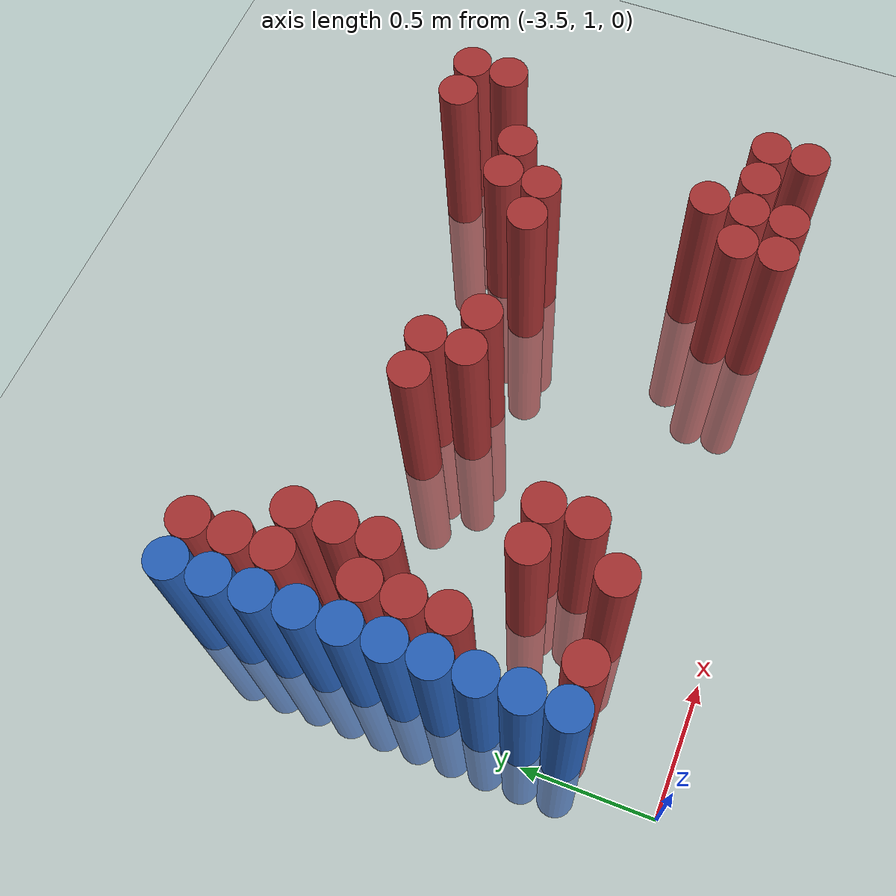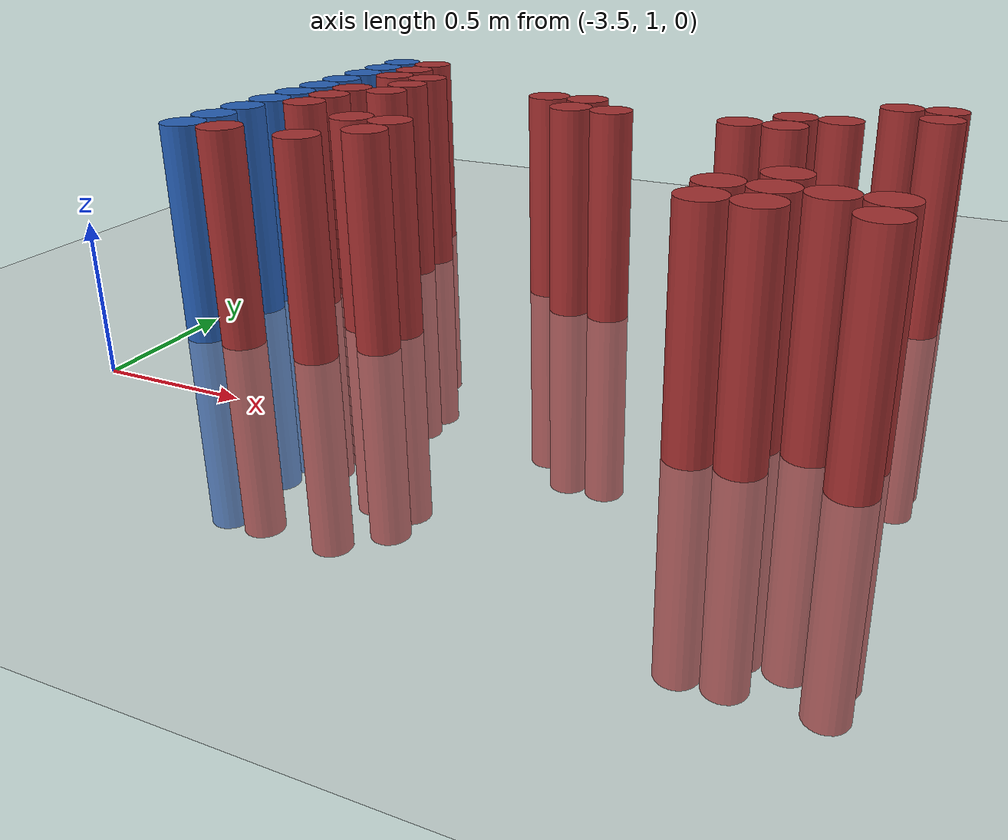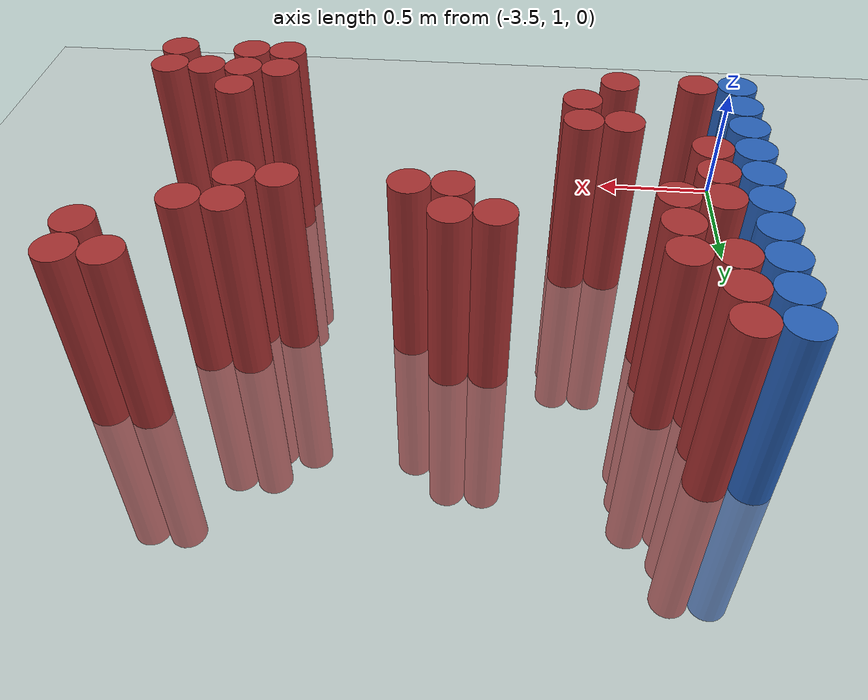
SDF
<sdf version="1.6">
 <world name="default">
  <model name="ground_plane">
   <static>1</static>
   <link name="link">
    <collision name="collision">
     <geometry><plane><normal>0 0 1</normal><size>100 100</size></plane></geometry>
     <surface><friction><ode><mu>100</mu><mu2>50</mu2></ode></friction></surface>
    </collision>
    <visual name="visual">
     <cast_shadows>0</cast_shadows>
     <geometry><plane><normal>0 0 1</normal><size>100 100</size></plane></geometry>
     <material>
      <script><uri>file://media/materials/scripts/gazebo.material</uri><name>Gazebo/Grey</name></script>
     </material>
    </visual>
   </link>
  </model>
  <model name="unit_cylinder_133">
   <static>1</static>
   <pose>-3.425000 1.375000 0.000000 0.000000 0.000000 0.000000</pose>
   <link name="link">
    <inertial>
     <mass>1</mass>
     <inertia><ixx>0.145833</ixx><ixy>0</ixy><ixz>0</ixz><iyy>0.145833</iyy><iyz>0</iyz><izz>0.125</izz></inertia>
    </inertial>
    <collision name="collision">
     <geometry><cylinder><radius>0.075000</radius><length>1.5</length></cylinder></geometry>
    </collision>
    <visual name="visual">
     <geometry><cylinder><radius>0.075000</radius><length>1.5</length></cylinder></geometry>
     <material>
      <ambient>0.152000 0.379000 0.720000 1</ambient>
      <diffuse>0.152000 0.379000 0.720000 1</diffuse>
     </material>
     <material>
      <script><name>Gazebo/Grey</name><uri>file://media/materials/scripts/gazebo.material</uri></script>
     </material>
    </visual>
   </link>
  </model>
  <model name="unit_cylinder_135">
   <static>1</static>
   <pose>-3.425000 1.525000 0.000000 0.000000 0.000000 0.000000</pose>
   <link name="link">
    <inertial>
     <mass>1</mass>
     <inertia><ixx>0.145833</ixx><ixy>0</ixy><ixz>0</ixz><iyy>0.145833</iyy><iyz>0</iyz><izz>0.125</izz></inertia>
    </inertial>
    <collision name="collision">
     <geometry><cylinder><radius>0.075000</radius><length>1.5</length></cylinder></geometry>
    </collision>
    <visual name="visual">
     <geometry><cylinder><radius>0.075000</radius><length>1.5</length></cylinder></geometry>
     <material>
      <ambient>0.152000 0.379000 0.720000 1</ambient>
      <diffuse>0.152000 0.379000 0.720000 1</diffuse>
     </material>
     <material>
      <script><name>Gazebo/Grey</name><uri>file://media/materials/scripts/gazebo.material</uri></script>
     </material>
    </visual>
   </link>
  </model>
  <model name="unit_cylinder_137">
   <static>1</static>
   <pose>-3.425000 1.675000 0.000000 0.000000 0.000000 0.000000</pose>
   <link name="link">
    <inertial>
     <mass>1</mass>
     <inertia><ixx>0.145833</ixx><ixy>0</ixy><ixz>0</ixz><iyy>0.145833</iyy><iyz>0</iyz><izz>0.125</izz></inertia>
    </inertial>
    <collision name="collision">
     <geometry><cylinder><radius>0.075000</radius><length>1.5</length></cylinder></geometry>
    </collision>
    <visual name="visual">
     <geometry><cylinder><radius>0.075000</radius><length>1.5</length></cylinder></geometry>
     <material>
      <ambient>0.152000 0.379000 0.720000 1</ambient>
      <diffuse>0.152000 0.379000 0.720000 1</diffuse>
     </material>
     <material>
      <script><name>Gazebo/Grey</name><uri>file://media/materials/scripts/gazebo.material</uri></script>
     </material>
    </visual>
   </link>
  </model>
  <model name="unit_cylinder_139">
   <static>1</static>
   <pose>-3.425000 1.825000 0.000000 0.000000 0.000000 0.000000</pose>
   <link name="link">
    <inertial>
     <mass>1</mass>
     <inertia><ixx>0.145833</ixx><ixy>0</ixy><ixz>0</ixz><iyy>0.145833</iyy><iyz>0</iyz><izz>0.125</izz></inertia>
    </inertial>
    <collision name="collision">
     <geometry><cylinder><radius>0.075000</radius><length>1.5</length></cylinder></geometry>
    </collision>
    <visual name="visual">
     <geometry><cylinder><radius>0.075000</radius><length>1.5</length></cylinder></geometry>
     <material>
      <ambient>0.152000 0.379000 0.720000 1</ambient>
      <diffuse>0.152000 0.379000 0.720000 1</diffuse>
     </material>
     <material>
      <script><name>Gazebo/Grey</name><uri>file://media/materials/scripts/gazebo.material</uri></script>
     </material>
    </visual>
   </link>
  </model>
  <model name="unit_cylinder_141">
   <static>1</static>
   <pose>-3.425000 1.975000 0.000000 0.000000 0.000000 0.000000</pose>
   <link name="link">
    <inertial>
     <mass>1</mass>
     <inertia><ixx>0.145833</ixx><ixy>0</ixy><ixz>0</ixz><iyy>0.145833</iyy><iyz>0</iyz><izz>0.125</izz></inertia>
    </inertial>
    <collision name="collision">
     <geometry><cylinder><radius>0.075000</radius><length>1.5</length></cylinder></geometry>
    </collision>
    <visual name="visual">
     <geometry><cylinder><radius>0.075000</radius><length>1.5</length></cylinder></geometry>
     <material>
      <ambient>0.152000 0.379000 0.720000 1</ambient>
      <diffuse>0.152000 0.379000 0.720000 1</diffuse>
     </material>
     <material>
      <script><name>Gazebo/Grey</name><uri>file://media/materials/scripts/gazebo.material</uri></script>
     </material>
    </visual>
   </link>
  </model>
  <model name="unit_cylinder_143">
   <static>1</static>
   <pose>-3.425000 2.125000 0.000000 0.000000 0.000000 0.000000</pose>
   <link name="link">
    <inertial>
     <mass>1</mass>
     <inertia><ixx>0.145833</ixx><ixy>0</ixy><ixz>0</ixz><iyy>0.145833</iyy><iyz>0</iyz><izz>0.125</izz></inertia>
    </inertial>
    <collision name="collision">
     <geometry><cylinder><radius>0.075000</radius><length>1.5</length></cylinder></geometry>
    </collision>
    <visual name="visual">
     <geometry><cylinder><radius>0.075000</radius><length>1.5</length></cylinder></geometry>
     <material>
      <ambient>0.152000 0.379000 0.720000 1</ambient>
      <diffuse>0.152000 0.379000 0.720000 1</diffuse>
     </material>
     <material>
      <script><name>Gazebo/Grey</name><uri>file://media/materials/scripts/gazebo.material</uri></script>
     </material>
    </visual>
   </link>
  </model>
  <model name="unit_cylinder_145">
   <static>1</static>
   <pose>-3.425000 2.275000 0.000000 0.000000 0.000000 0.000000</pose>
   <link name="link">
    <inertial>
     <mass>1</mass>
     <inertia><ixx>0.145833</ixx><ixy>0</ixy><ixz>0</ixz><iyy>0.145833</iyy><iyz>0</iyz><izz>0.125</izz></inertia>
    </inertial>
    <collision name="collision">
     <geometry><cylinder><radius>0.075000</radius><length>1.5</length></cylinder></geometry>
    </collision>
    <visual name="visual">
     <geometry><cylinder><radius>0.075000</radius><length>1.5</length></cylinder></geometry>
     <material>
      <ambient>0.152000 0.379000 0.720000 1</ambient>
      <diffuse>0.152000 0.379000 0.720000 1</diffuse>
     </material>
     <material>
      <script><name>Gazebo/Grey</name><uri>file://media/materials/scripts/gazebo.material</uri></script>
     </material>
    </visual>
   </link>
  </model>
  <model name="unit_cylinder_147">
   <static>1</static>
   <pose>-3.425000 2.425000 0.000000 0.000000 0.000000 0.000000</pose>
   <link name="link">
    <inertial>
     <mass>1</mass>
     <inertia><ixx>0.145833</ixx><ixy>0</ixy><ixz>0</ixz><iyy>0.145833</iyy><iyz>0</iyz><izz>0.125</izz></inertia>
    </inertial>
    <collision name="collision">
     <geometry><cylinder><radius>0.075000</radius><length>1.5</length></cylinder></geometry>
    </collision>
    <visual name="visual">
     <geometry><cylinder><radius>0.075000</radius><length>1.5</length></cylinder></geometry>
     <material>
      <ambient>0.152000 0.379000 0.720000 1</ambient>
      <diffuse>0.152000 0.379000 0.720000 1</diffuse>
     </material>
     <material>
      <script><name>Gazebo/Grey</name><uri>file://media/materials/scripts/gazebo.material</uri></script>
     </material>
    </visual>
   </link>
  </model>
  <model name="unit_cylinder_149">
   <static>1</static>
   <pose>-3.425000 2.575000 0.000000 0.000000 0.000000 0.000000</pose>
   <link name="link">
    <inertial>
     <mass>1</mass>
     <inertia><ixx>0.145833</ixx><ixy>0</ixy><ixz>0</ixz><iyy>0.145833</iyy><iyz>0</iyz><izz>0.125</izz></inertia>
    </inertial>
    <collision name="collision">
     <geometry><cylinder><radius>0.075000</radius><length>1.5</length></cylinder></geometry>
    </collision>
    <visual name="visual">
     <geometry><cylinder><radius>0.075000</radius><length>1.5</length></cylinder></geometry>
     <material>
      <ambient>0.152000 0.379000 0.720000 1</ambient>
      <diffuse>0.152000 0.379000 0.720000 1</diffuse>
     </material>
     <material>
      <script><name>Gazebo/Grey</name><uri>file://media/materials/scripts/gazebo.material</uri></script>
     </material>
    </visual>
   </link>
  </model>
  <model name="unit_cylinder_151">
   <static>1</static>
   <pose>-3.425000 2.725000 0.000000 0.000000 0.000000 0.000000</pose>
   <link name="link">
    <inertial>
     <mass>1</mass>
     <inertia><ixx>0.145833</ixx><ixy>0</ixy><ixz>0</ixz><iyy>0.145833</iyy><iyz>0</iyz><izz>0.125</izz></inertia>
    </inertial>
    <collision name="collision">
     <geometry><cylinder><radius>0.075000</radius><length>1.5</length></cylinder></geometry>
    </collision>
    <visual name="visual">
     <geometry><cylinder><radius>0.075000</radius><length>1.5</length></cylinder></geometry>
     <material>
      <ambient>0.152000 0.379000 0.720000 1</ambient>
      <diffuse>0.152000 0.379000 0.720000 1</diffuse>
     </material>
     <material>
      <script><name>Gazebo/Grey</name><uri>file://media/materials/scripts/gazebo.material</uri></script>
     </material>
    </visual>
   </link>
  </model>
  <model name="unit_cylinder_230">
   <static>1</static>
   <pose>-3.425000 1.375000 0.000000 0.000000 0.000000 0.000000</pose>
   <link name="link">
    <inertial>
     <mass>1</mass>
     <inertia><ixx>0.145833</ixx><ixy>0</ixy><ixz>0</ixz><iyy>0.145833</iyy><iyz>0</iyz><izz>0.125</izz></inertia>
    </inertial>
    <collision name="collision">
     <geometry><cylinder><radius>0.075000</radius><length>1.5</length></cylinder></geometry>
    </collision>
    <visual name="visual">
     <geometry><cylinder><radius>0.075000</radius><length>1.5</length></cylinder></geometry>
     <material>
      <ambient>0.152000 0.379000 0.720000 1</ambient>
      <diffuse>0.152000 0.379000 0.720000 1</diffuse>
     </material>
     <material>
      <script><name>Gazebo/Grey</name><uri>file://media/materials/scripts/gazebo.material</uri></script>
     </material>
    </visual>
   </link>
  </model>
  <model name="unit_cylinder_231">
   <static>1</static>
   <pose>-3.425000 1.525000 0.000000 0.000000 0.000000 0.000000</pose>
   <link name="link">
    <inertial>
     <mass>1</mass>
     <inertia><ixx>0.145833</ixx><ixy>0</ixy><ixz>0</ixz><iyy>0.145833</iyy><iyz>0</iyz><izz>0.125</izz></inertia>
    </inertial>
    <collision name="collision">
     <geometry><cylinder><radius>0.075000</radius><length>1.5</length></cylinder></geometry>
    </collision>
    <visual name="visual">
     <geometry><cylinder><radius>0.075000</radius><length>1.5</length></cylinder></geometry>
     <material>
      <ambient>0.152000 0.379000 0.720000 1</ambient>
      <diffuse>0.152000 0.379000 0.720000 1</diffuse>
     </material>
     <material>
      <script><name>Gazebo/Grey</name><uri>file://media/materials/scripts/gazebo.material</uri></script>
     </material>
    </visual>
   </link>
  </model>
  <model name="unit_cylinder_232">
   <static>1</static>
   <pose>-3.425000 1.675000 0.000000 0.000000 0.000000 0.000000</pose>
   <link name="link">
    <inertial>
     <mass>1</mass>
     <inertia><ixx>0.145833</ixx><ixy>0</ixy><ixz>0</ixz><iyy>0.145833</iyy><iyz>0</iyz><izz>0.125</izz></inertia>
    </inertial>
    <collision name="collision">
     <geometry><cylinder><radius>0.075000</radius><length>1.5</length></cylinder></geometry>
    </collision>
    <visual name="visual">
     <geometry><cylinder><radius>0.075000</radius><length>1.5</length></cylinder></geometry>
     <material>
      <ambient>0.152000 0.379000 0.720000 1</ambient>
      <diffuse>0.152000 0.379000 0.720000 1</diffuse>
     </material>
     <material>
      <script><name>Gazebo/Grey</name><uri>file://media/materials/scripts/gazebo.material</uri></script>
     </material>
    </visual>
   </link>
  </model>
  <model name="unit_cylinder_233">
   <static>1</static>
   <pose>-3.425000 1.825000 0.000000 0.000000 0.000000 0.000000</pose>
   <link name="link">
    <inertial>
     <mass>1</mass>
     <inertia><ixx>0.145833</ixx><ixy>0</ixy><ixz>0</ixz><iyy>0.145833</iyy><iyz>0</iyz><izz>0.125</izz></inertia>
    </inertial>
    <collision name="collision">
     <geometry><cylinder><radius>0.075000</radius><length>1.5</length></cylinder></geometry>
    </collision>
    <visual name="visual">
     <geometry><cylinder><radius>0.075000</radius><length>1.5</length></cylinder></geometry>
     <material>
      <ambient>0.152000 0.379000 0.720000 1</ambient>
      <diffuse>0.152000 0.379000 0.720000 1</diffuse>
     </material>
     <material>
      <script><name>Gazebo/Grey</name><uri>file://media/materials/scripts/gazebo.material</uri></script>
     </material>
    </visual>
   </link>
  </model>
  <model name="unit_cylinder_234">
   <static>1</static>
   <pose>-3.425000 1.975000 0.000000 0.000000 0.000000 0.000000</pose>
   <link name="link">
    <inertial>
     <mass>1</mass>
     <inertia><ixx>0.145833</ixx><ixy>0</ixy><ixz>0</ixz><iyy>0.145833</iyy><iyz>0</iyz><izz>0.125</izz></inertia>
    </inertial>
    <collision name="collision">
     <geometry><cylinder><radius>0.075000</radius><length>1.5</length></cylinder></geometry>
    </collision>
    <visual name="visual">
     <geometry><cylinder><radius>0.075000</radius><length>1.5</length></cylinder></geometry>
     <material>
      <ambient>0.152000 0.379000 0.720000 1</ambient>
      <diffuse>0.152000 0.379000 0.720000 1</diffuse>
     </material>
     <material>
      <script><name>Gazebo/Grey</name><uri>file://media/materials/scripts/gazebo.material</uri></script>
     </material>
    </visual>
   </link>
  </model>
  <model name="unit_cylinder_235">
   <static>1</static>
   <pose>-3.425000 2.125000 0.000000 0.000000 0.000000 0.000000</pose>
   <link name="link">
    <inertial>
     <mass>1</mass>
     <inertia><ixx>0.145833</ixx><ixy>0</ixy><ixz>0</ixz><iyy>0.145833</iyy><iyz>0</iyz><izz>0.125</izz></inertia>
    </inertial>
    <collision name="collision">
     <geometry><cylinder><radius>0.075000</radius><length>1.5</length></cylinder></geometry>
    </collision>
    <visual name="visual">
     <geometry><cylinder><radius>0.075000</radius><length>1.5</length></cylinder></geometry>
     <material>
      <ambient>0.152000 0.379000 0.720000 1</ambient>
      <diffuse>0.152000 0.379000 0.720000 1</diffuse>
     </material>
     <material>
      <script><name>Gazebo/Grey</name><uri>file://media/materials/scripts/gazebo.material</uri></script>
     </material>
    </visual>
   </link>
  </model>
  <model name="unit_cylinder_236">
   <static>1</static>
   <pose>-3.425000 2.275000 0.000000 0.000000 0.000000 0.000000</pose>
   <link name="link">
    <inertial>
     <mass>1</mass>
     <inertia><ixx>0.145833</ixx><ixy>0</ixy><ixz>0</ixz><iyy>0.145833</iyy><iyz>0</iyz><izz>0.125</izz></inertia>
    </inertial>
    <collision name="collision">
     <geometry><cylinder><radius>0.075000</radius><length>1.5</length></cylinder></geometry>
    </collision>
    <visual name="visual">
     <geometry><cylinder><radius>0.075000</radius><length>1.5</length></cylinder></geometry>
     <material>
      <ambient>0.152000 0.379000 0.720000 1</ambient>
      <diffuse>0.152000 0.379000 0.720000 1</diffuse>
     </material>
     <material>
      <script><name>Gazebo/Grey</name><uri>file://media/materials/scripts/gazebo.material</uri></script>
     </material>
    </visual>
   </link>
  </model>
  <model name="unit_cylinder_237">
   <static>1</static>
   <pose>-3.425000 2.425000 0.000000 0.000000 0.000000 0.000000</pose>
   <link name="link">
    <inertial>
     <mass>1</mass>
     <inertia><ixx>0.145833</ixx><ixy>0</ixy><ixz>0</ixz><iyy>0.145833</iyy><iyz>0</iyz><izz>0.125</izz></inertia>
    </inertial>
    <collision name="collision">
     <geometry><cylinder><radius>0.075000</radius><length>1.5</length></cylinder></geometry>
    </collision>
    <visual name="visual">
     <geometry><cylinder><radius>0.075000</radius><length>1.5</length></cylinder></geometry>
     <material>
      <ambient>0.152000 0.379000 0.720000 1</ambient>
      <diffuse>0.152000 0.379000 0.720000 1</diffuse>
     </material>
     <material>
      <script><name>Gazebo/Grey</name><uri>file://media/materials/scripts/gazebo.material</uri></script>
     </material>
    </visual>
   </link>
  </model>
  <model name="unit_cylinder_238">
   <static>1</static>
   <pose>-3.425000 2.575000 0.000000 0.000000 0.000000 0.000000</pose>
   <link name="link">
    <inertial>
     <mass>1</mass>
     <inertia><ixx>0.145833</ixx><ixy>0</ixy><ixz>0</ixz><iyy>0.145833</iyy><iyz>0</iyz><izz>0.125</izz></inertia>
    </inertial>
    <collision name="collision">
     <geometry><cylinder><radius>0.075000</radius><length>1.5</length></cylinder></geometry>
    </collision>
    <visual name="visual">
     <geometry><cylinder><radius>0.075000</radius><length>1.5</length></cylinder></geometry>
     <material>
      <ambient>0.152000 0.379000 0.720000 1</ambient>
      <diffuse>0.152000 0.379000 0.720000 1</diffuse>
     </material>
     <material>
      <script><name>Gazebo/Grey</name><uri>file://media/materials/scripts/gazebo.material</uri></script>
     </material>
    </visual>
   </link>
  </model>
  <model name="unit_cylinder_239">
   <static>1</static>
   <pose>-3.425000 2.725000 0.000000 0.000000 0.000000 0.000000</pose>
   <link name="link">
    <inertial>
     <mass>1</mass>
     <inertia><ixx>0.145833</ixx><ixy>0</ixy><ixz>0</ixz><iyy>0.145833</iyy><iyz>0</iyz><izz>0.125</izz></inertia>
    </inertial>
    <collision name="collision">
     <geometry><cylinder><radius>0.075000</radius><length>1.5</length></cylinder></geometry>
    </collision>
    <visual name="visual">
     <geometry><cylinder><radius>0.075000</radius><length>1.5</length></cylinder></geometry>
     <material>
      <ambient>0.152000 0.379000 0.720000 1</ambient>
      <diffuse>0.152000 0.379000 0.720000 1</diffuse>
     </material>
     <material>
      <script><name>Gazebo/Grey</name><uri>file://media/materials/scripts/gazebo.material</uri></script>
     </material>
    </visual>
   </link>
  </model>
  <model name="unit_cylinder_271">
   <static>1</static>
   <pose>-3.275000 1.375000 0.000000 0.000000 0.000000 0.000000</pose>
   <link name="link">
    <inertial>
     <mass>1</mass>
     <inertia><ixx>0.145833</ixx><ixy>0</ixy><ixz>0</ixz><iyy>0.145833</iyy><iyz>0</iyz><izz>0.125</izz></inertia>
    </inertial>
    <collision name="collision">
     <geometry><cylinder><radius>0.075000</radius><length>1.5</length></cylinder></geometry>
    </collision>
    <visual name="visual">
     <geometry><cylinder><radius>0.075000</radius><length>1.5</length></cylinder></geometry>
     <material>
      <ambient>0.648000 0.192000 0.192000 1</ambient>
      <diffuse>0.648000 0.192000 0.192000 1</diffuse>
     </material>
     <material>
      <script><name>Gazebo/Grey</name><uri>file://media/materials/scripts/gazebo.material</uri></script>
     </material>
    </visual>
   </link>
  </model>
  <model name="unit_cylinder_272">
   <static>1</static>
   <pose>-3.275000 1.825000 0.000000 0.000000 0.000000 0.000000</pose>
   <link name="link">
    <inertial>
     <mass>1</mass>
     <inertia><ixx>0.145833</ixx><ixy>0</ixy><ixz>0</ixz><iyy>0.145833</iyy><iyz>0</iyz><izz>0.125</izz></inertia>
    </inertial>
    <collision name="collision">
     <geometry><cylinder><radius>0.075000</radius><length>1.5</length></cylinder></geometry>
    </collision>
    <visual name="visual">
     <geometry><cylinder><radius>0.075000</radius><length>1.5</length></cylinder></geometry>
     <material>
      <ambient>0.648000 0.192000 0.192000 1</ambient>
      <diffuse>0.648000 0.192000 0.192000 1</diffuse>
     </material>
     <material>
      <script><name>Gazebo/Grey</name><uri>file://media/materials/scripts/gazebo.material</uri></script>
     </material>
    </visual>
   </link>
  </model>
  <model name="unit_cylinder_273">
   <static>1</static>
   <pose>-3.275000 1.975000 0.000000 0.000000 0.000000 0.000000</pose>
   <link name="link">
    <inertial>
     <mass>1</mass>
     <inertia><ixx>0.145833</ixx><ixy>0</ixy><ixz>0</ixz><iyy>0.145833</iyy><iyz>0</iyz><izz>0.125</izz></inertia>
    </inertial>
    <collision name="collision">
     <geometry><cylinder><radius>0.075000</radius><length>1.5</length></cylinder></geometry>
    </collision>
    <visual name="visual">
     <geometry><cylinder><radius>0.075000</radius><length>1.5</length></cylinder></geometry>
     <material>
      <ambient>0.648000 0.192000 0.192000 1</ambient>
      <diffuse>0.648000 0.192000 0.192000 1</diffuse>
     </material>
     <material>
      <script><name>Gazebo/Grey</name><uri>file://media/materials/scripts/gazebo.material</uri></script>
     </material>
    </visual>
   </link>
  </model>
  <model name="unit_cylinder_274">
   <static>1</static>
   <pose>-3.275000 2.125000 0.000000 0.000000 0.000000 0.000000</pose>
   <link name="link">
    <inertial>
     <mass>1</mass>
     <inertia><ixx>0.145833</ixx><ixy>0</ixy><ixz>0</ixz><iyy>0.145833</iyy><iyz>0</iyz><izz>0.125</izz></inertia>
    </inertial>
    <collision name="collision">
     <geometry><cylinder><radius>0.075000</radius><length>1.5</length></cylinder></geometry>
    </collision>
    <visual name="visual">
     <geometry><cylinder><radius>0.075000</radius><length>1.5</length></cylinder></geometry>
     <material>
      <ambient>0.648000 0.192000 0.192000 1</ambient>
      <diffuse>0.648000 0.192000 0.192000 1</diffuse>
     </material>
     <material>
      <script><name>Gazebo/Grey</name><uri>file://media/materials/scripts/gazebo.material</uri></script>
     </material>
    </visual>
   </link>
  </model>
  <model name="unit_cylinder_275">
   <static>1</static>
   <pose>-3.275000 2.425000 0.000000 0.000000 0.000000 0.000000</pose>
   <link name="link">
    <inertial>
     <mass>1</mass>
     <inertia><ixx>0.145833</ixx><ixy>0</ixy><ixz>0</ixz><iyy>0.145833</iyy><iyz>0</iyz><izz>0.125</izz></inertia>
    </inertial>
    <collision name="collision">
     <geometry><cylinder><radius>0.075000</radius><length>1.5</length></cylinder></geometry>
    </collision>
    <visual name="visual">
     <geometry><cylinder><radius>0.075000</radius><length>1.5</length></cylinder></geometry>
     <material>
      <ambient>0.648000 0.192000 0.192000 1</ambient>
      <diffuse>0.648000 0.192000 0.192000 1</diffuse>
     </material>
     <material>
      <script><name>Gazebo/Grey</name><uri>file://media/materials/scripts/gazebo.material</uri></script>
     </material>
    </visual>
   </link>
  </model>
  <model name="unit_cylinder_276">
   <static>1</static>
   <pose>-3.275000 2.575000 0.000000 0.000000 0.000000 0.000000</pose>
   <link name="link">
    <inertial>
     <mass>1</mass>
     <inertia><ixx>0.145833</ixx><ixy>0</ixy><ixz>0</ixz><iyy>0.145833</iyy><iyz>0</iyz><izz>0.125</izz></inertia>
    </inertial>
    <collision name="collision">
     <geometry><cylinder><radius>0.075000</radius><length>1.5</length></cylinder></geometry>
    </collision>
    <visual name="visual">
     <geometry><cylinder><radius>0.075000</radius><length>1.5</length></cylinder></geometry>
     <material>
      <ambient>0.648000 0.192000 0.192000 1</ambient>
      <diffuse>0.648000 0.192000 0.192000 1</diffuse>
     </material>
     <material>
      <script><name>Gazebo/Grey</name><uri>file://media/materials/scripts/gazebo.material</uri></script>
     </material>
    </visual>
   </link>
  </model>
  <model name="unit_cylinder_277">
   <static>1</static>
   <pose>-3.275000 2.725000 0.000000 0.000000 0.000000 0.000000</pose>
   <link name="link">
    <inertial>
     <mass>1</mass>
     <inertia><ixx>0.145833</ixx><ixy>0</ixy><ixz>0</ixz><iyy>0.145833</iyy><iyz>0</iyz><izz>0.125</izz></inertia>
    </inertial>
    <collision name="collision">
     <geometry><cylinder><radius>0.075000</radius><length>1.5</length></cylinder></geometry>
    </collision>
    <visual name="visual">
     <geometry><cylinder><radius>0.075000</radius><length>1.5</length></cylinder></geometry>
     <material>
      <ambient>0.648000 0.192000 0.192000 1</ambient>
      <diffuse>0.648000 0.192000 0.192000 1</diffuse>
     </material>
     <material>
      <script><name>Gazebo/Grey</name><uri>file://media/materials/scripts/gazebo.material</uri></script>
     </material>
    </visual>
   </link>
  </model>
  <model name="unit_cylinder_293">
   <static>1</static>
   <pose>-3.125000 2.125000 0.000000 0.000000 0.000000 0.000000</pose>
   <link name="link">
    <inertial>
     <mass>1</mass>
     <inertia><ixx>0.145833</ixx><ixy>0</ixy><ixz>0</ixz><iyy>0.145833</iyy><iyz>0</iyz><izz>0.125</izz></inertia>
    </inertial>
    <collision name="collision">
     <geometry><cylinder><radius>0.075000</radius><length>1.5</length></cylinder></geometry>
    </collision>
    <visual name="visual">
     <geometry><cylinder><radius>0.075000</radius><length>1.5</length></cylinder></geometry>
     <material>
      <ambient>0.648000 0.192000 0.192000 1</ambient>
      <diffuse>0.648000 0.192000 0.192000 1</diffuse>
     </material>
     <material>
      <script><name>Gazebo/Grey</name><uri>file://media/materials/scripts/gazebo.material</uri></script>
     </material>
    </visual>
   </link>
  </model>
  <model name="unit_cylinder_294">
   <static>1</static>
   <pose>-3.125000 2.275000 0.000000 0.000000 0.000000 0.000000</pose>
   <link name="link">
    <inertial>
     <mass>1</mass>
     <inertia><ixx>0.145833</ixx><ixy>0</ixy><ixz>0</ixz><iyy>0.145833</iyy><iyz>0</iyz><izz>0.125</izz></inertia>
    </inertial>
    <collision name="collision">
     <geometry><cylinder><radius>0.075000</radius><length>1.5</length></cylinder></geometry>
    </collision>
    <visual name="visual">
     <geometry><cylinder><radius>0.075000</radius><length>1.5</length></cylinder></geometry>
     <material>
      <ambient>0.648000 0.192000 0.192000 1</ambient>
      <diffuse>0.648000 0.192000 0.192000 1</diffuse>
     </material>
     <material>
      <script><name>Gazebo/Grey</name><uri>file://media/materials/scripts/gazebo.material</uri></script>
     </material>
    </visual>
   </link>
  </model>
  <model name="unit_cylinder_295">
   <static>1</static>
   <pose>-3.125000 2.425000 0.000000 0.000000 0.000000 0.000000</pose>
   <link name="link">
    <inertial>
     <mass>1</mass>
     <inertia><ixx>0.145833</ixx><ixy>0</ixy><ixz>0</ixz><iyy>0.145833</iyy><iyz>0</iyz><izz>0.125</izz></inertia>
    </inertial>
    <collision name="collision">
     <geometry><cylinder><radius>0.075000</radius><length>1.5</length></cylinder></geometry>
    </collision>
    <visual name="visual">
     <geometry><cylinder><radius>0.075000</radius><length>1.5</length></cylinder></geometry>
     <material>
      <ambient>0.648000 0.192000 0.192000 1</ambient>
      <diffuse>0.648000 0.192000 0.192000 1</diffuse>
     </material>
     <material>
      <script><name>Gazebo/Grey</name><uri>file://media/materials/scripts/gazebo.material</uri></script>
     </material>
    </visual>
   </link>
  </model>
  <model name="unit_cylinder_303">
   <static>1</static>
   <pose>-2.975000 1.375000 0.000000 0.000000 0.000000 0.000000</pose>
   <link name="link">
    <inertial>
     <mass>1</mass>
     <inertia><ixx>0.145833</ixx><ixy>0</ixy><ixz>0</ixz><iyy>0.145833</iyy><iyz>0</iyz><izz>0.125</izz></inertia>
    </inertial>
    <collision name="collision">
     <geometry><cylinder><radius>0.075000</radius><length>1.5</length></cylinder></geometry>
    </collision>
    <visual name="visual">
     <geometry><cylinder><radius>0.075000</radius><length>1.5</length></cylinder></geometry>
     <material>
      <ambient>0.648000 0.192000 0.192000 1</ambient>
      <diffuse>0.648000 0.192000 0.192000 1</diffuse>
     </material>
     <material>
      <script><name>Gazebo/Grey</name><uri>file://media/materials/scripts/gazebo.material</uri></script>
     </material>
    </visual>
   </link>
  </model>
  <model name="unit_cylinder_304">
   <static>1</static>
   <pose>-2.975000 1.675000 0.000000 0.000000 0.000000 0.000000</pose>
   <link name="link">
    <inertial>
     <mass>1</mass>
     <inertia><ixx>0.145833</ixx><ixy>0</ixy><ixz>0</ixz><iyy>0.145833</iyy><iyz>0</iyz><izz>0.125</izz></inertia>
    </inertial>
    <collision name="collision">
     <geometry><cylinder><radius>0.075000</radius><length>1.5</length></cylinder></geometry>
    </collision>
    <visual name="visual">
     <geometry><cylinder><radius>0.075000</radius><length>1.5</length></cylinder></geometry>
     <material>
      <ambient>0.648000 0.192000 0.192000 1</ambient>
      <diffuse>0.648000 0.192000 0.192000 1</diffuse>
     </material>
     <material>
      <script><name>Gazebo/Grey</name><uri>file://media/materials/scripts/gazebo.material</uri></script>
     </material>
    </visual>
   </link>
  </model>
  <model name="unit_cylinder_313">
   <static>1</static>
   <pose>-2.825000 1.525000 0.000000 0.000000 0.000000 0.000000</pose>
   <link name="link">
    <inertial>
     <mass>1</mass>
     <inertia><ixx>0.145833</ixx><ixy>0</ixy><ixz>0</ixz><iyy>0.145833</iyy><iyz>0</iyz><izz>0.125</izz></inertia>
    </inertial>
    <collision name="collision">
     <geometry><cylinder><radius>0.075000</radius><length>1.5</length></cylinder></geometry>
    </collision>
    <visual name="visual">
     <geometry><cylinder><radius>0.075000</radius><length>1.5</length></cylinder></geometry>
     <material>
      <ambient>0.648000 0.192000 0.192000 1</ambient>
      <diffuse>0.648000 0.192000 0.192000 1</diffuse>
     </material>
     <material>
      <script><name>Gazebo/Grey</name><uri>file://media/materials/scripts/gazebo.material</uri></script>
     </material>
    </visual>
   </link>
  </model>
  <model name="unit_cylinder_314">
   <static>1</static>
   <pose>-2.825000 1.675000 0.000000 0.000000 0.000000 0.000000</pose>
   <link name="link">
    <inertial>
     <mass>1</mass>
     <inertia><ixx>0.145833</ixx><ixy>0</ixy><ixz>0</ixz><iyy>0.145833</iyy><iyz>0</iyz><izz>0.125</izz></inertia>
    </inertial>
    <collision name="collision">
     <geometry><cylinder><radius>0.075000</radius><length>1.5</length></cylinder></geometry>
    </collision>
    <visual name="visual">
     <geometry><cylinder><radius>0.075000</radius><length>1.5</length></cylinder></geometry>
     <material>
      <ambient>0.648000 0.192000 0.192000 1</ambient>
      <diffuse>0.648000 0.192000 0.192000 1</diffuse>
     </material>
     <material>
      <script><name>Gazebo/Grey</name><uri>file://media/materials/scripts/gazebo.material</uri></script>
     </material>
    </visual>
   </link>
  </model>
  <model name="unit_cylinder_325">
   <static>1</static>
   <pose>-2.525000 2.275000 0.000000 0.000000 0.000000 0.000000</pose>
   <link name="link">
    <inertial>
     <mass>1</mass>
     <inertia><ixx>0.145833</ixx><ixy>0</ixy><ixz>0</ixz><iyy>0.145833</iyy><iyz>0</iyz><izz>0.125</izz></inertia>
    </inertial>
    <collision name="collision">
     <geometry><cylinder><radius>0.075000</radius><length>1.5</length></cylinder></geometry>
    </collision>
    <visual name="visual">
     <geometry><cylinder><radius>0.075000</radius><length>1.5</length></cylinder></geometry>
     <material>
      <ambient>0.648000 0.192000 0.192000 1</ambient>
      <diffuse>0.648000 0.192000 0.192000 1</diffuse>
     </material>
     <material>
      <script><name>Gazebo/Grey</name><uri>file://media/materials/scripts/gazebo.material</uri></script>
     </material>
    </visual>
   </link>
  </model>
  <model name="unit_cylinder_330">
   <static>1</static>
   <pose>-2.375000 2.125000 0.000000 0.000000 0.000000 0.000000</pose>
   <link name="link">
    <inertial>
     <mass>1</mass>
     <inertia><ixx>0.145833</ixx><ixy>0</ixy><ixz>0</ixz><iyy>0.145833</iyy><iyz>0</iyz><izz>0.125</izz></inertia>
    </inertial>
    <collision name="collision">
     <geometry><cylinder><radius>0.075000</radius><length>1.5</length></cylinder></geometry>
    </collision>
    <visual name="visual">
     <geometry><cylinder><radius>0.075000</radius><length>1.5</length></cylinder></geometry>
     <material>
      <ambient>0.648000 0.192000 0.192000 1</ambient>
      <diffuse>0.648000 0.192000 0.192000 1</diffuse>
     </material>
     <material>
      <script><name>Gazebo/Grey</name><uri>file://media/materials/scripts/gazebo.material</uri></script>
     </material>
    </visual>
   </link>
  </model>
  <model name="unit_cylinder_331">
   <static>1</static>
   <pose>-2.375000 2.275000 0.000000 0.000000 0.000000 0.000000</pose>
   <link name="link">
    <inertial>
     <mass>1</mass>
     <inertia><ixx>0.145833</ixx><ixy>0</ixy><ixz>0</ixz><iyy>0.145833</iyy><iyz>0</iyz><izz>0.125</izz></inertia>
    </inertial>
    <collision name="collision">
     <geometry><cylinder><radius>0.075000</radius><length>1.5</length></cylinder></geometry>
    </collision>
    <visual name="visual">
     <geometry><cylinder><radius>0.075000</radius><length>1.5</length></cylinder></geometry>
     <material>
      <ambient>0.648000 0.192000 0.192000 1</ambient>
      <diffuse>0.648000 0.192000 0.192000 1</diffuse>
     </material>
     <material>
      <script><name>Gazebo/Grey</name><uri>file://media/materials/scripts/gazebo.material</uri></script>
     </material>
    </visual>
   </link>
  </model>
  <model name="unit_cylinder_338">
   <static>1</static>
   <pose>-2.225000 2.125000 0.000000 0.000000 0.000000 0.000000</pose>
   <link name="link">
    <inertial>
     <mass>1</mass>
     <inertia><ixx>0.145833</ixx><ixy>0</ixy><ixz>0</ixz><iyy>0.145833</iyy><iyz>0</iyz><izz>0.125</izz></inertia>
    </inertial>
    <collision name="collision">
     <geometry><cylinder><radius>0.075000</radius><length>1.5</length></cylinder></geometry>
    </collision>
    <visual name="visual">
     <geometry><cylinder><radius>0.075000</radius><length>1.5</length></cylinder></geometry>
     <material>
      <ambient>0.648000 0.192000 0.192000 1</ambient>
      <diffuse>0.648000 0.192000 0.192000 1</diffuse>
     </material>
     <material>
      <script><name>Gazebo/Grey</name><uri>file://media/materials/scripts/gazebo.material</uri></script>
     </material>
    </visual>
   </link>
  </model>
  <model name="unit_cylinder_361">
   <static>1</static>
   <pose>-1.775000 2.125000 0.000000 0.000000 0.000000 0.000000</pose>
   <link name="link">
    <inertial>
     <mass>1</mass>
     <inertia><ixx>0.145833</ixx><ixy>0</ixy><ixz>0</ixz><iyy>0.145833</iyy><iyz>0</iyz><izz>0.125</izz></inertia>
    </inertial>
    <collision name="collision">
     <geometry><cylinder><radius>0.075000</radius><length>1.5</length></cylinder></geometry>
    </collision>
    <visual name="visual">
     <geometry><cylinder><radius>0.075000</radius><length>1.5</length></cylinder></geometry>
     <material>
      <ambient>0.648000 0.192000 0.192000 1</ambient>
      <diffuse>0.648000 0.192000 0.192000 1</diffuse>
     </material>
     <material>
      <script><name>Gazebo/Grey</name><uri>file://media/materials/scripts/gazebo.material</uri></script>
     </material>
    </visual>
   </link>
  </model>
  <model name="unit_cylinder_368">
   <static>1</static>
   <pose>-1.625000 1.225000 0.000000 0.000000 0.000000 0.000000</pose>
   <link name="link">
    <inertial>
     <mass>1</mass>
     <inertia><ixx>0.145833</ixx><ixy>0</ixy><ixz>0</ixz><iyy>0.145833</iyy><iyz>0</iyz><izz>0.125</izz></inertia>
    </inertial>
    <collision name="collision">
     <geometry><cylinder><radius>0.075000</radius><length>1.5</length></cylinder></geometry>
    </collision>
    <visual name="visual">
     <geometry><cylinder><radius>0.075000</radius><length>1.5</length></cylinder></geometry>
     <material>
      <ambient>0.648000 0.192000 0.192000 1</ambient>
      <diffuse>0.648000 0.192000 0.192000 1</diffuse>
     </material>
     <material>
      <script><name>Gazebo/Grey</name><uri>file://media/materials/scripts/gazebo.material</uri></script>
     </material>
    </visual>
   </link>
  </model>
  <model name="unit_cylinder_369">
   <static>1</static>
   <pose>-1.625000 1.375000 0.000000 0.000000 0.000000 0.000000</pose>
   <link name="link">
    <inertial>
     <mass>1</mass>
     <inertia><ixx>0.145833</ixx><ixy>0</ixy><ixz>0</ixz><iyy>0.145833</iyy><iyz>0</iyz><izz>0.125</izz></inertia>
    </inertial>
    <collision name="collision">
     <geometry><cylinder><radius>0.075000</radius><length>1.5</length></cylinder></geometry>
    </collision>
    <visual name="visual">
     <geometry><cylinder><radius>0.075000</radius><length>1.5</length></cylinder></geometry>
     <material>
      <ambient>0.648000 0.192000 0.192000 1</ambient>
      <diffuse>0.648000 0.192000 0.192000 1</diffuse>
     </material>
     <material>
      <script><name>Gazebo/Grey</name><uri>file://media/materials/scripts/gazebo.material</uri></script>
     </material>
    </visual>
   </link>
  </model>
  <model name="unit_cylinder_370">
   <static>1</static>
   <pose>-1.625000 2.125000 0.000000 0.000000 0.000000 0.000000</pose>
   <link name="link">
    <inertial>
     <mass>1</mass>
     <inertia><ixx>0.145833</ixx><ixy>0</ixy><ixz>0</ixz><iyy>0.145833</iyy><iyz>0</iyz><izz>0.125</izz></inertia>
    </inertial>
    <collision name="collision">
     <geometry><cylinder><radius>0.075000</radius><length>1.5</length></cylinder></geometry>
    </collision>
    <visual name="visual">
     <geometry><cylinder><radius>0.075000</radius><length>1.5</length></cylinder></geometry>
     <material>
      <ambient>0.648000 0.192000 0.192000 1</ambient>
      <diffuse>0.648000 0.192000 0.192000 1</diffuse>
     </material>
     <material>
      <script><name>Gazebo/Grey</name><uri>file://media/materials/scripts/gazebo.material</uri></script>
     </material>
    </visual>
   </link>
  </model>
  <model name="unit_cylinder_371">
   <static>1</static>
   <pose>-1.625000 2.275000 0.000000 0.000000 0.000000 0.000000</pose>
   <link name="link">
    <inertial>
     <mass>1</mass>
     <inertia><ixx>0.145833</ixx><ixy>0</ixy><ixz>0</ixz><iyy>0.145833</iyy><iyz>0</iyz><izz>0.125</izz></inertia>
    </inertial>
    <collision name="collision">
     <geometry><cylinder><radius>0.075000</radius><length>1.5</length></cylinder></geometry>
    </collision>
    <visual name="visual">
     <geometry><cylinder><radius>0.075000</radius><length>1.5</length></cylinder></geometry>
     <material>
      <ambient>0.648000 0.192000 0.192000 1</ambient>
      <diffuse>0.648000 0.192000 0.192000 1</diffuse>
     </material>
     <material>
      <script><name>Gazebo/Grey</name><uri>file://media/materials/scripts/gazebo.material</uri></script>
     </material>
    </visual>
   </link>
  </model>
  <model name="unit_cylinder_377">
   <static>1</static>
   <pose>-1.475000 1.225000 0.000000 0.000000 0.000000 0.000000</pose>
   <link name="link">
    <inertial>
     <mass>1</mass>
     <inertia><ixx>0.145833</ixx><ixy>0</ixy><ixz>0</ixz><iyy>0.145833</iyy><iyz>0</iyz><izz>0.125</izz></inertia>
    </inertial>
    <collision name="collision">
     <geometry><cylinder><radius>0.075000</radius><length>1.5</length></cylinder></geometry>
    </collision>
    <visual name="visual">
     <geometry><cylinder><radius>0.075000</radius><length>1.5</length></cylinder></geometry>
     <material>
      <ambient>0.648000 0.192000 0.192000 1</ambient>
      <diffuse>0.648000 0.192000 0.192000 1</diffuse>
     </material>
     <material>
      <script><name>Gazebo/Grey</name><uri>file://media/materials/scripts/gazebo.material</uri></script>
     </material>
    </visual>
   </link>
  </model>
  <model name="unit_cylinder_378">
   <static>1</static>
   <pose>-1.475000 1.375000 0.000000 0.000000 0.000000 0.000000</pose>
   <link name="link">
    <inertial>
     <mass>1</mass>
     <inertia><ixx>0.145833</ixx><ixy>0</ixy><ixz>0</ixz><iyy>0.145833</iyy><iyz>0</iyz><izz>0.125</izz></inertia>
    </inertial>
    <collision name="collision">
     <geometry><cylinder><radius>0.075000</radius><length>1.5</length></cylinder></geometry>
    </collision>
    <visual name="visual">
     <geometry><cylinder><radius>0.075000</radius><length>1.5</length></cylinder></geometry>
     <material>
      <ambient>0.648000 0.192000 0.192000 1</ambient>
      <diffuse>0.648000 0.192000 0.192000 1</diffuse>
     </material>
     <material>
      <script><name>Gazebo/Grey</name><uri>file://media/materials/scripts/gazebo.material</uri></script>
     </material>
    </visual>
   </link>
  </model>
  <model name="unit_cylinder_379">
   <static>1</static>
   <pose>-1.475000 1.525000 0.000000 0.000000 0.000000 0.000000</pose>
   <link name="link">
    <inertial>
     <mass>1</mass>
     <inertia><ixx>0.145833</ixx><ixy>0</ixy><ixz>0</ixz><iyy>0.145833</iyy><iyz>0</iyz><izz>0.125</izz></inertia>
    </inertial>
    <collision name="collision">
     <geometry><cylinder><radius>0.075000</radius><length>1.5</length></cylinder></geometry>
    </collision>
    <visual name="visual">
     <geometry><cylinder><radius>0.075000</radius><length>1.5</length></cylinder></geometry>
     <material>
      <ambient>0.648000 0.192000 0.192000 1</ambient>
      <diffuse>0.648000 0.192000 0.192000 1</diffuse>
     </material>
     <material>
      <script><name>Gazebo/Grey</name><uri>file://media/materials/scripts/gazebo.material</uri></script>
     </material>
    </visual>
   </link>
  </model>
  <model name="unit_cylinder_380">
   <static>1</static>
   <pose>-1.475000 2.275000 0.000000 0.000000 0.000000 0.000000</pose>
   <link name="link">
    <inertial>
     <mass>1</mass>
     <inertia><ixx>0.145833</ixx><ixy>0</ixy><ixz>0</ixz><iyy>0.145833</iyy><iyz>0</iyz><izz>0.125</izz></inertia>
    </inertial>
    <collision name="collision">
     <geometry><cylinder><radius>0.075000</radius><length>1.5</length></cylinder></geometry>
    </collision>
    <visual name="visual">
     <geometry><cylinder><radius>0.075000</radius><length>1.5</length></cylinder></geometry>
     <material>
      <ambient>0.648000 0.192000 0.192000 1</ambient>
      <diffuse>0.648000 0.192000 0.192000 1</diffuse>
     </material>
     <material>
      <script><name>Gazebo/Grey</name><uri>file://media/materials/scripts/gazebo.material</uri></script>
     </material>
    </visual>
   </link>
  </model>
  <model name="unit_cylinder_385">
   <static>1</static>
   <pose>-1.325000 1.375000 0.000000 0.000000 0.000000 0.000000</pose>
   <link name="link">
    <inertial>
     <mass>1</mass>
     <inertia><ixx>0.145833</ixx><ixy>0</ixy><ixz>0</ixz><iyy>0.145833</iyy><iyz>0</iyz><izz>0.125</izz></inertia>
    </inertial>
    <collision name="collision">
     <geometry><cylinder><radius>0.075000</radius><length>1.5</length></cylinder></geometry>
    </collision>
    <visual name="visual">
     <geometry><cylinder><radius>0.075000</radius><length>1.5</length></cylinder></geometry>
     <material>
      <ambient>0.648000 0.192000 0.192000 1</ambient>
      <diffuse>0.648000 0.192000 0.192000 1</diffuse>
     </material>
     <material>
      <script><name>Gazebo/Grey</name><uri>file://media/materials/scripts/gazebo.material</uri></script>
     </material>
    </visual>
   </link>
  </model>
  <model name="unit_cylinder_386">
   <static>1</static>
   <pose>-1.325000 2.575000 0.000000 0.000000 0.000000 0.000000</pose>
   <link name="link">
    <inertial>
     <mass>1</mass>
     <inertia><ixx>0.145833</ixx><ixy>0</ixy><ixz>0</ixz><iyy>0.145833</iyy><iyz>0</iyz><izz>0.125</izz></inertia>
    </inertial>
    <collision name="collision">
     <geometry><cylinder><radius>0.075000</radius><length>1.5</length></cylinder></geometry>
    </collision>
    <visual name="visual">
     <geometry><cylinder><radius>0.075000</radius><length>1.5</length></cylinder></geometry>
     <material>
      <ambient>0.648000 0.192000 0.192000 1</ambient>
      <diffuse>0.648000 0.192000 0.192000 1</diffuse>
     </material>
     <material>
      <script><name>Gazebo/Grey</name><uri>file://media/materials/scripts/gazebo.material</uri></script>
     </material>
    </visual>
   </link>
  </model>
  <model name="unit_cylinder_397">
   <static>1</static>
   <pose>-1.175000 1.225000 0.000000 0.000000 0.000000 0.000000</pose>
   <link name="link">
    <inertial>
     <mass>1</mass>
     <inertia><ixx>0.145833</ixx><ixy>0</ixy><ixz>0</ixz><iyy>0.145833</iyy><iyz>0</iyz><izz>0.125</izz></inertia>
    </inertial>
    <collision name="collision">
     <geometry><cylinder><radius>0.075000</radius><length>1.5</length></cylinder></geometry>
    </collision>
    <visual name="visual">
     <geometry><cylinder><radius>0.075000</radius><length>1.5</length></cylinder></geometry>
     <material>
      <ambient>0.648000 0.192000 0.192000 1</ambient>
      <diffuse>0.648000 0.192000 0.192000 1</diffuse>
     </material>
     <material>
      <script><name>Gazebo/Grey</name><uri>file://media/materials/scripts/gazebo.material</uri></script>
     </material>
    </visual>
   </link>
  </model>
  <model name="unit_cylinder_398">
   <static>1</static>
   <pose>-1.175000 1.375000 0.000000 0.000000 0.000000 0.000000</pose>
   <link name="link">
    <inertial>
     <mass>1</mass>
     <inertia><ixx>0.145833</ixx><ixy>0</ixy><ixz>0</ixz><iyy>0.145833</iyy><iyz>0</iyz><izz>0.125</izz></inertia>
    </inertial>
    <collision name="collision">
     <geometry><cylinder><radius>0.075000</radius><length>1.5</length></cylinder></geometry>
    </collision>
    <visual name="visual">
     <geometry><cylinder><radius>0.075000</radius><length>1.5</length></cylinder></geometry>
     <material>
      <ambient>0.648000 0.192000 0.192000 1</ambient>
      <diffuse>0.648000 0.192000 0.192000 1</diffuse>
     </material>
     <material>
      <script><name>Gazebo/Grey</name><uri>file://media/materials/scripts/gazebo.material</uri></script>
     </material>
    </visual>
   </link>
  </model>
  <model name="unit_cylinder_399">
   <static>1</static>
   <pose>-1.175000 2.425000 0.000000 0.000000 0.000000 0.000000</pose>
   <link name="link">
    <inertial>
     <mass>1</mass>
     <inertia><ixx>0.145833</ixx><ixy>0</ixy><ixz>0</ixz><iyy>0.145833</iyy><iyz>0</iyz><izz>0.125</izz></inertia>
    </inertial>
    <collision name="collision">
     <geometry><cylinder><radius>0.075000</radius><length>1.5</length></cylinder></geometry>
    </collision>
    <visual name="visual">
     <geometry><cylinder><radius>0.075000</radius><length>1.5</length></cylinder></geometry>
     <material>
      <ambient>0.648000 0.192000 0.192000 1</ambient>
      <diffuse>0.648000 0.192000 0.192000 1</diffuse>
     </material>
     <material>
      <script><name>Gazebo/Grey</name><uri>file://media/materials/scripts/gazebo.material</uri></script>
     </material>
    </visual>
   </link>
  </model>
  <model name="unit_cylinder_400">
   <static>1</static>
   <pose>-1.175000 2.575000 0.000000 0.000000 0.000000 0.000000</pose>
   <link name="link">
    <inertial>
     <mass>1</mass>
     <inertia><ixx>0.145833</ixx><ixy>0</ixy><ixz>0</ixz><iyy>0.145833</iyy><iyz>0</iyz><izz>0.125</izz></inertia>
    </inertial>
    <collision name="collision">
     <geometry><cylinder><radius>0.075000</radius><length>1.5</length></cylinder></geometry>
    </collision>
    <visual name="visual">
     <geometry><cylinder><radius>0.075000</radius><length>1.5</length></cylinder></geometry>
     <material>
      <ambient>0.648000 0.192000 0.192000 1</ambient>
      <diffuse>0.648000 0.192000 0.192000 1</diffuse>
     </material>
     <material>
      <script><name>Gazebo/Grey</name><uri>file://media/materials/scripts/gazebo.material</uri></script>
     </material>
    </visual>
   </link>
  </model>
 </world>
</sdf>
